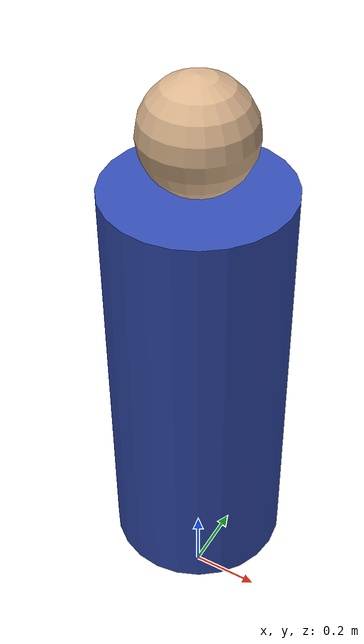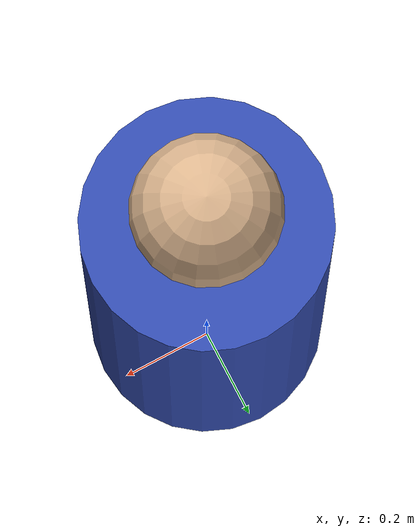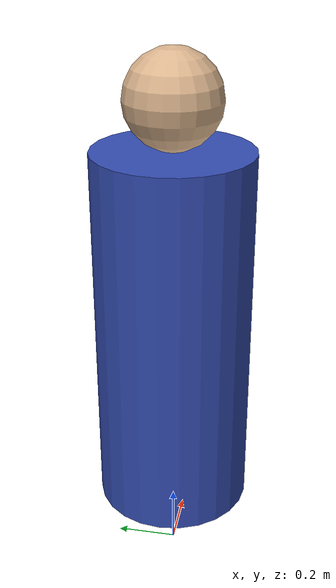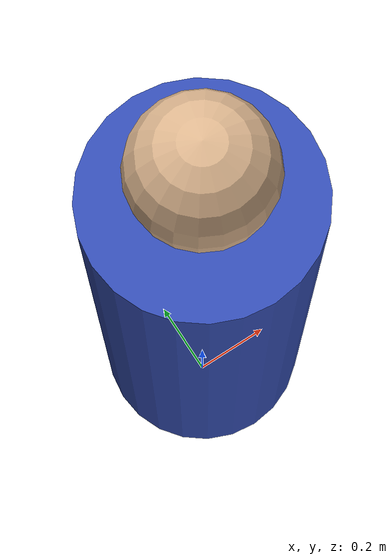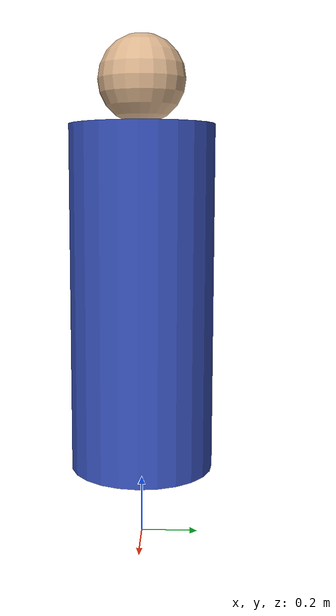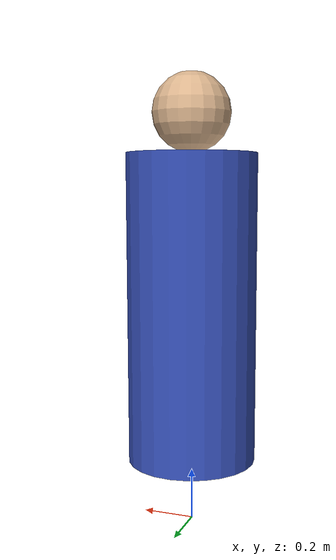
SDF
<?xml version="1.0"?>
<sdf version="1.9">
  <model name="runway_person">
    <static>true</static>
    <pose>0 0 0 0 0 0</pose>

    <!-- Body (torso + legs as a cylinder) -->
    <link name="body">
      <pose>0 0 0.85 0 0 0</pose>
      <visual name="torso_visual">
        <geometry>
          <cylinder>
            <radius>0.25</radius>
            <length>1.2</length>
          </cylinder>
        </geometry>
        <material>
          <ambient>0.2 0.3 0.7 1.0</ambient>
          <diffuse>0.2 0.3 0.7 1.0</diffuse>
        </material>
      </visual>
      <collision name="torso_collision">
        <geometry>
          <cylinder>
            <radius>0.25</radius>
            <length>1.2</length>
          </cylinder>
        </geometry>
      </collision>
      <inertial>
        <mass>70.0</mass>
        <inertia>
          <ixx>5.0</ixx><iyy>5.0</iyy><izz>1.0</izz>
        </inertia>
      </inertial>
    </link>

    <!-- Head -->
    <link name="head">
      <pose>0 0 1.6 0 0 0</pose>
      <visual name="head_visual">
        <geometry>
          <sphere>
            <radius>0.15</radius>
          </sphere>
        </geometry>
        <material>
          <ambient>0.85 0.7 0.55 1.0</ambient>
          <diffuse>0.85 0.7 0.55 1.0</diffuse>
        </material>
      </visual>
      <collision name="head_collision">
        <geometry>
          <sphere>
            <radius>0.15</radius>
          </sphere>
        </geometry>
      </collision>
      <inertial>
        <mass>5.0</mass>
        <inertia>
          <ixx>0.05</ixx><iyy>0.05</iyy><izz>0.05</izz>
        </inertia>
      </inertial>
    </link>

    <joint name="head_joint" type="fixed">
      <parent>body</parent>
      <child>head</child>
    </joint>
  </model>
</sdf>
